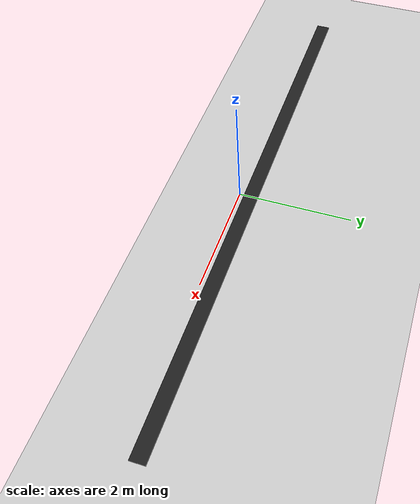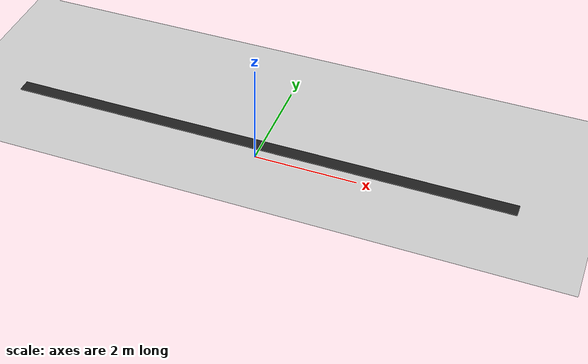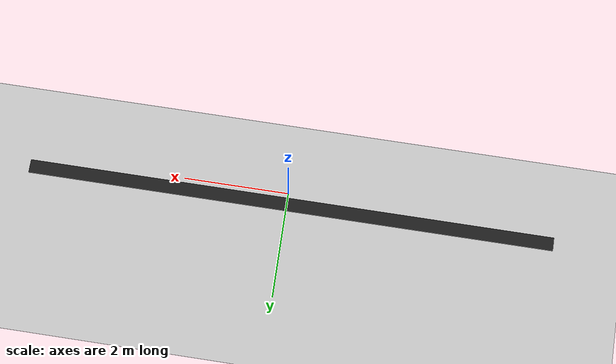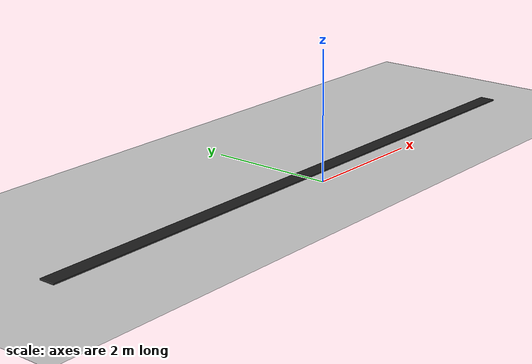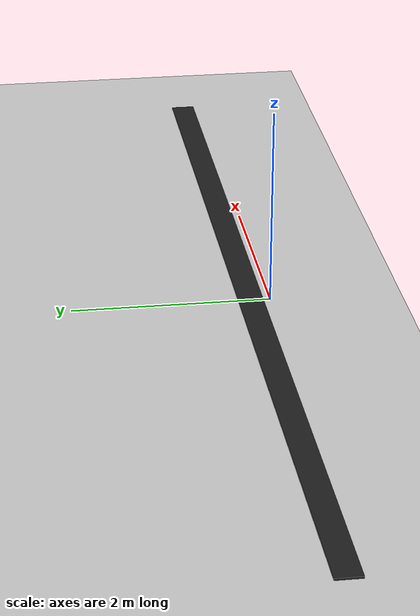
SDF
<?xml version="1.0" ?>
<sdf version="1.8">
  <world name="capstone_world">
    <physics name="1ms" type="ignored">
      <max_step_size>0.001</max_step_size>
      <real_time_factor>1.0</real_time_factor>
    </physics>
    <plugin filename="gz-sim-physics-system" name="gz::sim::systems::Physics"/>
    <plugin filename="gz-sim-user-commands-system" name="gz::sim::systems::UserCommands"/>
    <plugin filename="gz-sim-scene-broadcaster-system" name="gz::sim::systems::SceneBroadcaster"/>

    <plugin filename="gz-sim-sensors-system" name="gz::sim::systems::Sensors">
      <render_engine>ogre2</render_engine>
    </plugin>

    <light type="directional" name="sun">
      <cast_shadows>true</cast_shadows>
      <pose>0 0 10 0 0 0</pose>
      <diffuse>1 1 1 1</diffuse>
      <specular>0.5 0.5 0.5 1</specular>
      <direction>-0.5 0.1 -0.9</direction>
    </light>

    <model name="ground_plane">
      <static>true</static>
      <link name="link">
        <collision name="collision"><geometry><plane><normal>0 0 1</normal><size>100 100</size></plane></geometry></collision>
        <visual name="visual">
          <geometry><plane><normal>0 0 1</normal><size>100 100</size></plane></geometry>
          <material><ambient>0.8 0.8 0.8 1</ambient><diffuse>0.8 0.8 0.8 1</diffuse></material>
        </visual>
      </link>
    </model>

    <model name="conveyor_belt_model">
      <static>true</static>
      <pose>-0.06 0.23 0.1 0 0 0</pose>
      <link name="belt_link">
        <collision name="col">
          <geometry><box><size>10.0 0.25 0.02</size></box></geometry>
          <surface><friction><ode><mu>1.0</mu><mu2>1.0</mu2></ode></friction></surface>
        </collision>
        <visual name="vis">
          <geometry><box><size>10.0 0.25 0.02</size></box></geometry>
          <material><ambient>0.08 0.08 0.08 1</ambient><diffuse>0.12 0.12 0.12 1</diffuse></material>
        </visual>
      </link>
      <plugin filename="gz-sim-track-controller-system" name="gz::sim::systems::TrackController">
        <link>belt_link</link>
        <initial_velocity>0</initial_velocity>
      </plugin>
    </model>

    <model name="overhead_camera">
      <static>true</static>
      <pose>-0.06 0.23 1.1 0 1.5708 0</pose>
      <link name="link">
        <sensor name="overhead_cam" type="camera">
          <camera>
            <horizontal_fov>1.047</horizontal_fov>
            <image><width>640</width><height>480</height></image>
            <clip><near>0.1</near><far>10</far></clip>
          </camera>
          <always_on>1</always_on>
          <update_rate>30</update_rate>
          <visualize>true</visualize>
          <topic>/overhead_camera/image_raw</topic>
        </sensor>
      </link>
    </model>
  </world>
</sdf>
